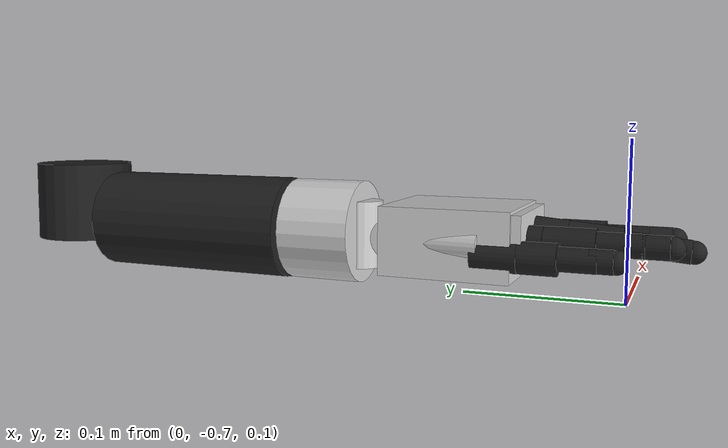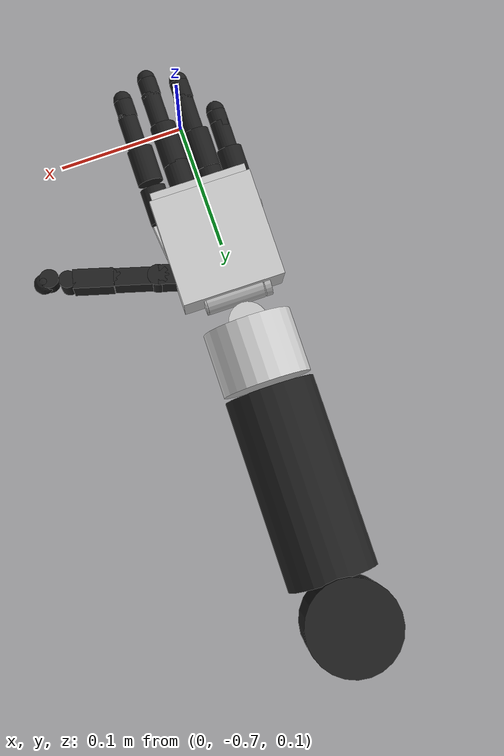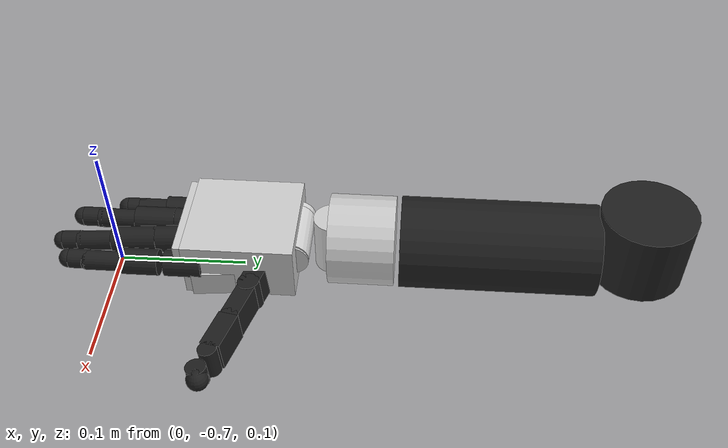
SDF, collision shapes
<sdf version='1.5'>
	<model name="mpl_haptix_right_forearm">
	<!-- Model SDF copied from gazebo_models -->

	<link name='world'>
		<pose>0 0 0 0 0 0</pose>
	</link>

	<joint name='elbow' type='revolute'>
		<child>forearm</child>
		<parent>world</parent>
		<axis>
			<xyz>0 0 1.0</xyz>
			<use_parent_model_frame>1</use_parent_model_frame>
		</axis>
		<limit>
			<lower>-1.57</lower>
			<upper>1.57</upper>
		</limit>
	</joint>
	<link name='forearm'>
		<pose>0.00660504 -0.294573 0.119123 -1.21334e-13 2.77556e-17 -0.0115373</pose>

		<collision name='collision'>
			<pose>0 0 0.02855 0 0 0</pose>
			<geometry>
				<cylinder>
					<radius>0.03567</radius>
					<length>0.0571</length>
				</cylinder>
			</geometry>

		</collision>
		<collision name='collision_1'>
			<pose>0 -0.10745 0.016 1.5707 0 0</pose>
				<geometry>
					<cylinder>
						<radius>0.035</radius>
						<length>0.148</length>
					</cylinder>
				</geometry>

		</collision>
		<visual name='visual'>
			<geometry>
				<mesh>
					<uri>model://mpl_haptix_right_forearm/meshes/forearm.stl</uri>
				</mesh>
			</geometry>
			<material>
				<script>
					<name>Gazebo/FlatBlack</name>
				</script>
			</material>
		</visual>
	</link>

	<link name='wristy'>
		<pose>0.00449937 -0.479995 0.135123 -1.2164e-13 1.09079e-14 -0.0115373</pose>

		<collision name='collision'>
			<pose>0 -0.025 0 1.5707 0 0</pose>
			<geometry>
				<cylinder>
					<radius>0.03447</radius>
					<length>0.05</length>
				</cylinder>
			</geometry>

		</collision>
		<visual name='visual'>
			<geometry>
				<mesh>
					<uri>model://mpl_haptix_right_forearm/meshes/wristy.stl</uri>
				</mesh>
			</geometry>
			<material>
				<ambient>0.2 0.2 0.2 1</ambient>
				<diffuse>0.8 0.8 0.8 1</diffuse>
				<specular>0.9 0.9 0.9 1</specular>
			</material>
		</visual>
	</link>
	<joint name='wristy' type='revolute'>
		<child>wristy</child>
			<parent>forearm</parent>
			<axis>
				<xyz>0.011537 0.999933 -1.2164e-13</xyz>

				<use_parent_model_frame>1</use_parent_model_frame>
			</axis>
<limit>
			<lower>-1.57</lower>
			<upper>1.57</upper>
		</limit>
	</joint>

	<link name='wristx'>
		<pose>0.003916 -0.527636 0.137161 -1.18962e-13 1.21847e-14 -0.0115373</pose>

		<collision name='collision'>
			<pose>0 0 -0.00314 0 0 0</pose>
			<geometry>
				<cylinder>
					<radius>0.01473</radius>
					<length>0.04478</length>
				</cylinder>
			</geometry>

		</collision>
		<collision name='collision_1'>
			<pose>0.02360 -0.02969 -0.00240 0 1.5707 0</pose>
			<geometry>
				<cylinder>
					<radius>0.013175</radius>
					<length>0.005</length>
				</cylinder>
			</geometry>

		</collision>
		<collision name='collision_2'>
			<pose>-0.02360 -0.02969 -0.00240 0 1.5707 0</pose>
			<geometry>
				<cylinder>
					<radius>0.013175</radius>
					<length>0.005</length>
				</cylinder>
			</geometry>

		</collision>
		<visual name='visual'>
			<geometry>
				<mesh>
					<uri>model://mpl_haptix_right_forearm/meshes/wristx.stl</uri>
				</mesh>
			</geometry>
			<material>
				<ambient>0.2 0.2 0.2 1</ambient>
				<diffuse>0.8 0.8 0.8 1</diffuse>
				<specular>0.9 0.9 0.9 1</specular>
			</material>
		</visual>
	</link>
	<joint name='wristx' type='revolute'>
<child>wristx</child>
<parent>wristy</parent>
<axis>
<xyz>-1.35564e-14 -1.18814e-13 -1</xyz>

<use_parent_model_frame>1</use_parent_model_frame>
</axis>

</joint>

<link name='wristz'>
<pose>0.00375708 -0.557636 0.135067 -2.87105e-13 1.42109e-14 -0.0115373</pose>

<collision name='collision'>
<pose>0.00207 -0.00047 0.00046 1.5707 0 1.5707</pose>
<geometry>
<cylinder>
<radius>0.01411</radius>
<length>0.04482</length>
</cylinder>
</geometry>

</collision>
<collision name='collision_palm'>
<max_contacts>4</max_contacts>
<pose>0.002 -0.03739 0 0 0 0</pose>
<geometry>
<box>
<size>0.07928 0.08316 0.04402</size>
</box>
</geometry>

</collision>
<collision name="palmEdge">
<max_contacts>4</max_contacts>
<pose>-0.028 -0.03 0 1.57 0 -0.1</pose>
<geometry>
<cylinder>
<radius>0.01</radius>
<length>0.060</length>
</cylinder>
</geometry>

</collision>
 <!-- Dorsal surface (top) -->
<collision name="handTop">
<max_contacts>4</max_contacts>
<pose>0.002 -0.045 0.01 0 0 0</pose>
<geometry>
<box>
<size>0.075 0.08 0.02</size>
</box>
</geometry>

</collision>
<!-- Palm 0 (closer to thumb) -->
<collision name="palm0">
<max_contacts>4</max_contacts>
<pose>0.023 -0.04 -0.012 0 0 0.1</pose>
<geometry>
<box>
<size>0.037 0.07 0.02</size>
</box>
</geometry>

</collision>
<!-- Palm 1 (closer to pinky) -->
<collision name="palm1">
<max_contacts>4</max_contacts>
<pose>-0.018 -0.04 -0.012 0 0 0</pose>
<geometry>
<box>
<size>0.037 0.07 0.02</size>
</box>
</geometry>

</collision>
<visual name='visual'>
<geometry>
<mesh>
<uri>model://mpl_haptix_right_forearm/meshes/wristz.stl</uri>
</mesh>
</geometry>
<material>
<ambient>0.2 0.2 0.2 1</ambient>
<diffuse>0.8 0.8 0.8 1</diffuse>
<specular>0.9 0.9 0.9 1</specular>
</material>
</visual>
<visual name='visual_palm'>
<pose>0.025625 0 0 1.7427e-13 8.3267e-17 -3.1876e-16</pose>
<geometry>
<mesh>
<uri>model://mpl_haptix_right_forearm/meshes/palm.stl</uri>
</mesh>
</geometry>
<material>
<script>
<name>Gazebo/FlatBlack</name>
</script>
</material>
</visual>
</link>
<joint name='wristz' type='revolute'>
<child>wristz</child>
<parent>wristx</parent>
<axis>
<xyz>0.999933 -0.011537 -1.42109e-14</xyz>

<use_parent_model_frame>1</use_parent_model_frame>
</axis>

</joint>

<link name='index0'>
<pose>0.0384854 -0.623842 0.136079 -1.14726e-13 0.174533 -0.0115373</pose>

<collision name='collision'>
<max_contacts>1</max_contacts>
<pose>0 -0.01339 0 1.5707 0 0</pose>
<geometry>
<cylinder>
<length>0.028</length>
<radius>0.01</radius>
</cylinder>
</geometry>

</collision>
<visual name='visual'>
<geometry>
<mesh>
<uri>model://mpl_haptix_right_forearm/meshes/index0.stl</uri>
</mesh>
</geometry>
<material>
<script>
<name>Gazebo/FlatBlack</name>
</script>
</material>
</visual>
</link>
<joint name='index0' type='revolute'>
<child>index0</child>
<parent>wristz</parent>
<axis>
<xyz>-0.173637 0.00200338 -0.984808</xyz>

<use_parent_model_frame>1</use_parent_model_frame>
</axis>

</joint>

<link name='index1'>
<pose>0.0383394 -0.641841 0.136068 -1.1474e-13 0.174533 -0.0115373</pose>

<collision name='collision'>
<max_contacts>2</max_contacts>
<pose>0 -0.02782 0 1.5707 0 0</pose>
<geometry>
<cylinder>
<radius>0.01</radius>
<length>0.02781</length>
</cylinder>
</geometry>

</collision>
<visual name='visual'>
<geometry>
<mesh>
<uri>model://mpl_haptix_right_forearm/meshes/index1.stl</uri>
</mesh>
</geometry>
<material>
<script>
<name>Gazebo/FlatBlack</name>
</script>
</material>
</visual>
</link>
<joint name='index1' type='revolute'>
<child>index1</child>
<parent>index0</parent>
<axis>
<xyz>0.984742 -0.0113618 -0.173648</xyz>

<use_parent_model_frame>1</use_parent_model_frame>
</axis>

</joint>

<link name='index2'>
<pose>0.0389938 -0.685352 0.136372 -1.1445e-13 0.174533 -0.0115373</pose>

<collision name='collision'>
<max_contacts>2</max_contacts>
<pose>0 -0.01152 0 1.5707 0 0</pose>
<geometry>
<cylinder>
<length>0.029</length>
<radius>0.0075</radius>
</cylinder>
</geometry>

</collision>
<collision name='collision_1'>
<max_contacts>2</max_contacts>
<pose>0 -0.02502 0 0 0 0</pose>
<geometry>
<sphere>
<radius>0.0075</radius>
</sphere>
</geometry>

</collision>
<visual name='visual'>
<geometry>
<mesh>
<uri>model://mpl_haptix_right_forearm/meshes/index2.stl</uri>
</mesh>
</geometry>
<material>
<script>
<name>Gazebo/FlatBlack</name>
</script>
</material>
</visual>
</link>
<joint name='index2' type='revolute'>
<child>index2</child>
<parent>index1</parent>
<axis>
<xyz>0.984742 -0.0113618 -0.173648</xyz>

<use_parent_model_frame>1</use_parent_model_frame>
</axis>

</joint>

<link name='index3'>
<self_collide>true</self_collide>
<pose>0.0380858 -0.709843 0.136482 -1.15476e-13 0.174533 -0.0115373</pose>

<collision name='collision'>
<max_contacts>1</max_contacts>
<pose>0 -0.00688 0.0001 1.5707 0 0</pose>
<geometry>
<cylinder>
<length>0.01376</length>
<radius>0.0074</radius>
</cylinder>
</geometry>

</collision>
<collision name='collision_1'>
<max_contacts>1</max_contacts>
<pose>0 -0.015 0.0001 0 0 0</pose>
<geometry>
<sphere>
<radius>0.0072</radius>
</sphere>
</geometry>

</collision>
<visual name='visual'>
<geometry>
<mesh>
<uri>model://mpl_haptix_right_forearm/meshes/index3.stl</uri>
</mesh>
</geometry>
<material>
<script>
<name>Gazebo/FlatBlack</name>
</script>
</material>
</visual>
</link>
<joint name='index3' type='revolute'>
<child>index3</child>
<parent>index2</parent>
<axis>
<xyz>0.984742 -0.0113618 -0.173648</xyz>

<use_parent_model_frame>1</use_parent_model_frame>
</axis>

</joint>

<link name='middle0'>
<pose>0.0156685 -0.63568 0.140513 0.0872665 1.4183e-14 -0.0115373</pose>

<collision name='collision'>
<max_contacts>1</max_contacts>
<pose>0 -0.01339 0 1.5707 0 0</pose>
<geometry>
<cylinder>
<length>0.028</length>
<radius>0.01</radius>
</cylinder>
</geometry>

</collision>
<visual name='visual'>
<geometry>
<mesh>
<uri>model://mpl_haptix_right_forearm/meshes/middle0.stl</uri>
</mesh>
</geometry>
<material>
<script>
<name>Gazebo/FlatBlack</name>
</script>
</material>
</visual>
</link>
<joint name='middle0' type='revolute'>
<child>middle0</child>
<parent>wristz</parent>
<axis>
<xyz>0.00100552 0.0871499 -0.996195</xyz>

<use_parent_model_frame>1</use_parent_model_frame>
</axis>

</joint>

<link name='middle1'>
<pose>0.0155242 -0.653612 0.138944 0.0872665 1.43013e-14 -0.0115373</pose>

<collision name='collision'>
<max_contacts>2</max_contacts>
<pose>0 -0.025 0 1.5707 0 0</pose>
<geometry>
<cylinder>
<radius>0.01</radius>
<length>0.03459</length>
</cylinder>
</geometry>

</collision>
<visual name='visual'>
<geometry>
<mesh>
<uri>model://mpl_haptix_right_forearm/meshes/middle1.stl</uri>
</mesh>
</geometry>
<material>
<script>
<name>Gazebo/FlatBlack</name>
</script>
</material>
</visual>
</link>
<joint name='middle1' type='revolute'>
<child>middle1</child>
<parent>middle0</parent>
<axis>
<xyz>0.999933 -0.011537 -1.43013e-14</xyz>

<use_parent_model_frame>1</use_parent_model_frame>
</axis>

</joint>

<link name='middle2'>
<pose>0.0161097 -0.696999 0.135651 0.0872665 1.32728e-14 -0.0115373</pose>

<collision name='collision'>
<max_contacts>2</max_contacts>
<pose>0 -0.01152 0 1.5707 0 0</pose>
<geometry>
<cylinder>
<length>0.029</length>
<radius>0.0075</radius>
</cylinder>
</geometry>

</collision>
<collision name='collision_1'>
<max_contacts>2</max_contacts>
<pose>0 -0.02302 0 0 0 0</pose>
<geometry>
<sphere>
<radius>0.0075</radius>
</sphere>
</geometry>

</collision>
<visual name='visual'>
<geometry>
<mesh>
<uri>model://mpl_haptix_right_forearm/meshes/middle2.stl</uri>
</mesh>
</geometry>
<material>
<script>
<name>Gazebo/FlatBlack</name>
</script>
</material>
</visual>
</link>
<joint name='middle2' type='revolute'>
<child>middle2</child>
<parent>middle1</parent>
<axis>
<xyz>0.999933 -0.011537 -1.32727e-14</xyz>

<use_parent_model_frame>1</use_parent_model_frame>
</axis>

</joint>

<link name='middle3'>
<self_collide>true</self_collide>
<pose>0.0151931 -0.721397 0.133515 0.0872665 1.51577e-14 -0.0115373</pose>

<collision name='collision'>
<max_contacts>1</max_contacts>
<pose>0 -0.00688 0.0001 1.5707 0 0</pose>
<geometry>
<cylinder>
<length>0.01376</length>
<radius>0.0074</radius>
</cylinder>
</geometry>

</collision>
<collision name='collision_1'>
<max_contacts>1</max_contacts>
<pose>0 -0.015 0.0001 0 0 0</pose>
<geometry>
<sphere>
<radius>0.0072</radius>
</sphere>
</geometry>

</collision>
<visual name='visual'>
<geometry>
<mesh>
<uri>model://mpl_haptix_right_forearm/meshes/middle3.stl</uri>
</mesh>
</geometry>
<material>
<script>
<name>Gazebo/FlatBlack</name>
</script>
</material>
</visual>
</link>
<joint name='middle3' type='revolute'>
<child>middle3</child>
<parent>middle2</parent>
<axis>
<xyz>0.999933 -0.011537 -1.51577e-14</xyz>

<use_parent_model_frame>1</use_parent_model_frame>
</axis>

</joint>

<link name='pinky0'>
<pose>-0.0275009 -0.61268 0.129428 -1.14942e-13 -0.174533 -0.0115373</pose>

<collision name='collision'>
<max_contacts>1</max_contacts>
<pose>0 -0.01339 0 1.5707 0 0</pose>
<geometry>
<cylinder>
<length>0.028</length>
<radius>0.01</radius>
</cylinder>
</geometry>

</collision>
<visual name='visual'>
<geometry>
<mesh>
<uri>model://mpl_haptix_right_forearm/meshes/pinky0.stl</uri>
</mesh>
</geometry>
<material>
<script>
<name>Gazebo/FlatBlack</name>
</script>
</material>
</visual>
</link>
<joint name='pinky0' type='revolute'>
<child>pinky0</child>
<parent>wristz</parent>
<axis>
<xyz>0.173637 -0.00200338 -0.984808</xyz>

<use_parent_model_frame>1</use_parent_model_frame>
</axis>

</joint>

<link name='pinky1'>
<pose>-0.0276458 -0.630579 0.129439 -1.14943e-13 -0.174533 -0.0115373</pose>

<collision name='collision'>
<max_contacts>2</max_contacts>
<pose>0 -0.02082 0 1.5707 0 0</pose>
<geometry>
<cylinder>
<radius>0.01</radius>
<length>0.02381</length>
</cylinder>
</geometry>

</collision>
<visual name='visual'>
<geometry>
<mesh>
<uri>model://mpl_haptix_right_forearm/meshes/pinky1.stl</uri>
</mesh>
</geometry>
<material>
<script>
<name>Gazebo/FlatBlack</name>
</script>
</material>
</visual>
</link>
<joint name='pinky1' type='revolute'>
<child>pinky1</child>
<parent>pinky0</parent>
<axis>
<xyz>0.984742 -0.0113618 0.173648</xyz>

<use_parent_model_frame>1</use_parent_model_frame>
</axis>

</joint>

<link name='pinky2'>
<pose>-0.0275441 -0.663582 0.130032 -1.14415e-13 -0.174533 -0.0115373</pose>

<collision name='collision'>
<max_contacts>2</max_contacts>
<pose>0 -0.0076 0 1.5707 0 0</pose>
<geometry>
<cylinder>
<length>0.029</length>
<radius>0.0075</radius>
</cylinder>
</geometry>

</collision>
<visual name='visual'>
<geometry>
<mesh>
<uri>model://mpl_haptix_right_forearm/meshes/pinky2.stl</uri>
</mesh>
</geometry>
<material>
<script>
<name>Gazebo/FlatBlack</name>
</script>
</material>
</visual>
</link>
<joint name='pinky2' type='revolute'>
<child>pinky2</child>
<parent>pinky1</parent>
<axis>
<xyz>0.984742 -0.0113618 0.173648</xyz>

<use_parent_model_frame>1</use_parent_model_frame>
</axis>

</joint>

<link name='pinky3'>
<self_collide>true</self_collide>
<pose>-0.0277931 -0.681081 0.130023 -1.14622e-13 -0.174533 -0.0115373</pose>

<collision name='collision'>
<max_contacts>1</max_contacts>
<pose>0 -0.00688 0.0001 1.5707 0 0</pose>
<geometry>
<cylinder>
<length>0.01376</length>
<radius>0.0074</radius>
</cylinder>
</geometry>

</collision>
<collision name='collision_1'>
<max_contacts>1</max_contacts>
<pose>0 -0.015 0.0001 0 0 0</pose>
<geometry>
<sphere>
<radius>0.0072</radius>
</sphere>
</geometry>

</collision>
<visual name='visual'>
<geometry>
<mesh>
<uri>model://mpl_haptix_right_forearm/meshes/pinky3.stl</uri>
</mesh>
</geometry>
<material>
<script>
<name>Gazebo/FlatBlack</name>
</script>
</material>
</visual>
</link>
<joint name='pinky3' type='revolute'>
<child>pinky3</child>
<parent>pinky2</parent>
<axis>
<xyz>0.984742 -0.0113618 0.173648</xyz>

<use_parent_model_frame>1</use_parent_model_frame>
</axis>

</joint>

<link name='ring0'>
<pose>-0.00687963 -0.624218 0.136579 -1.14553e-13 -0.174533 -0.0115373</pose>

<collision name='collision'>
<max_contacts>1</max_contacts>
<pose>0 -0.01339 0 1.5707 0 0</pose>
<geometry>
<cylinder>
<length>0.028</length>
<radius>0.01</radius>
</cylinder>
</geometry>

</collision>
<visual name='visual'>
<geometry>
<mesh>
<uri>model://mpl_haptix_right_forearm/meshes/ring0.stl</uri>
</mesh>
</geometry>
<material>
<script>
<name>Gazebo/FlatBlack</name>
</script>
</material>
</visual>
</link>
<joint name='ring0' type='revolute'>
<child>ring0</child>
<parent>wristz</parent>
<axis>
<xyz>0.173637 -0.00200338 -0.984808</xyz>

<use_parent_model_frame>1</use_parent_model_frame>
</axis>

</joint>

<link name='ring1'>
<pose>-0.00702565 -0.642218 0.13659 -1.14538e-13 -0.174533 -0.0115373</pose>

<collision name='collision'>
<max_contacts>2</max_contacts>
<pose>0 -0.02505 0 1.5707 0 0</pose>
<geometry>
<cylinder>
<radius>0.01</radius>
<length>0.03095</length>
</cylinder>
</geometry>

</collision>
<visual name='visual'>
<geometry>
<mesh>
<uri>model://mpl_haptix_right_forearm/meshes/ring1.stl</uri>
</mesh>
</geometry>
<material>
<script>
<name>Gazebo/FlatBlack</name>
</script>
</material>
</visual>
</link>
<joint name='ring1' type='revolute'>
<child>ring1</child>
<parent>ring0</parent>
<axis>
<xyz>0.984742 -0.0113618 0.173648</xyz>

<use_parent_model_frame>1</use_parent_model_frame>
</axis>

</joint>

<link name='ring2'>
<pose>-0.0065449 -0.685726 0.137271 -1.14828e-13 -0.174533 -0.0115373</pose>

<collision name='collision'>
<max_contacts>2</max_contacts>
<pose>0 -0.01152 0 1.5707 0 0</pose>
<geometry>
<cylinder>
<length>0.029</length>
<radius>0.0075</radius>
</cylinder>
</geometry>

</collision>
<collision name='collision_1'>
<max_contacts>2</max_contacts>
<pose>0 -0.02302 0 0 0 0</pose>
<geometry>
<sphere>
<radius>0.0075</radius>
</sphere>
</geometry>

</collision>
<visual name='visual'>
<geometry>
<mesh>
<uri>model://mpl_haptix_right_forearm/meshes/ring2.stl</uri>
</mesh>
</geometry>
<material>
<script>
<name>Gazebo/FlatBlack</name>
</script>
</material>
</visual>
</link>
<joint name='ring2' type='revolute'>
<child>ring2</child>
<parent>ring1</parent>
<axis>
<xyz>0.984742 -0.0113618 0.173648</xyz>

<use_parent_model_frame>1</use_parent_model_frame>
</axis>

</joint>

<link name='ring3'>
<self_collide>true</self_collide>
<pose>-0.00745287 -0.710217 0.13716 -1.14821e-13 -0.174533 -0.0115373</pose>

<collision name='collision'>
<max_contacts>1</max_contacts>
<pose>0 -0.00688 0.0001 1.5707 0 0</pose>
<geometry>
<cylinder>
<length>0.01376</length>
<radius>0.0074</radius>
</cylinder>
</geometry>

</collision>
<collision name='collision_1'>
<max_contacts>1</max_contacts>
<pose>0 -0.015 0.0001 0 0 0</pose>
<geometry>
<sphere>
<radius>0.0072</radius>
</sphere>
</geometry>

</collision>
<visual name='visual'>
<geometry>
<mesh>
<uri>model://mpl_haptix_right_forearm/meshes/ring3.stl</uri>
</mesh>
</geometry>
<material>
<script>
<name>Gazebo/FlatBlack</name>
</script>
</material>
</visual>
</link>
<joint name='ring3' type='revolute'>
<child>ring3</child>
<parent>ring2</parent>
<axis>
<xyz>0.984742 -0.0113618 0.173648</xyz>

<use_parent_model_frame>1</use_parent_model_frame>
</axis>

</joint>

<link name='thumb0'>
<pose>0.0374985 -0.578725 0.124974 0.0873761 -0.0305803 -0.276903</pose>

<collision name='collision'>
<max_contacts>2</max_contacts>
<pose>0.0200 -0.001 0.0015 0 0 0</pose>
<geometry>
<cylinder>
<length>0.023</length>
<radius>0.008221</radius>
</cylinder>
</geometry>

</collision>
<collision name='collision_1'>
<max_contacts>2</max_contacts>
<pose>0.01 -.001 0.0015 0 0 0</pose>
<geometry>
<box>
<size>0.0202 0.0155 0.023</size>
</box>
</geometry>

</collision>
<visual name='visual'>
<geometry>
<mesh>
<uri>model://mpl_haptix_right_forearm/meshes/thumb0.stl</uri>
</mesh>
</geometry>
<material>
<script>
<name>Gazebo/FlatBlack</name>
</script>
</material>
</visual>
</link>
<joint name='thumb0' type='revolute'>
<child>thumb0</child>
<parent>wristz</parent>
<axis>
<xyz>0.269769 0.958967 0.0872241</xyz>

<use_parent_model_frame>1</use_parent_model_frame>
</axis>

</joint>

<link name='thumb1'>
<pose>0.057306 -0.585356 0.126981 0.0873761 -0.0305803 -0.276903</pose>

<collision name='collision'>
<max_contacts>2</max_contacts>
<pose>-0.00056 0.00 -0.00025 0 0 0</pose>
<geometry>
<cylinder>
<length>0.0188</length>
<radius>0.00688</radius>
</cylinder>
</geometry>

</collision>
<collision name='collision_1'>
<max_contacts>2</max_contacts>
<pose>0.03381 0 0 0 0 0</pose>
<geometry>
<cylinder>
<length>0.02176</length>
<radius>0.00688</radius>
</cylinder>
</geometry>

</collision>
<collision name='collision_2'>
<max_contacts>2</max_contacts>
<pose>0.01613 0 0 0 0 0</pose>
<geometry>
<box>
<size>0.03273 0.01376 0.02176</size>
</box>
</geometry>

</collision>
<visual name='visual'>
<geometry>
<mesh>
<uri>model://mpl_haptix_right_forearm/meshes/thumb1.stl</uri>
</mesh>
</geometry>
<material>
<script>
<name>Gazebo/FlatBlack</name>
</script>
</material>
</visual>
</link>
<joint name='thumb1' type='revolute'>
<child>thumb1</child>
<parent>thumb0</parent>
<axis>
<xyz>0.0531549 0.0756139 -0.995719</xyz>

<use_parent_model_frame>1</use_parent_model_frame>
</axis>

</joint>

<link name='thumb2'>
<pose>0.0895543 -0.594453 0.127266 0.0873761 -0.0305803 -0.276903</pose>

<collision name='collision'>
<max_contacts>2</max_contacts>
<pose>0.03415 0 0.001 0 0 0</pose>
<geometry>
<cylinder>
<radius>0.00679</radius>
<length>0.02236</length>
</cylinder>
</geometry>

</collision>
<collision name='collision_1'>
<max_contacts>2</max_contacts>
<pose>0.01493 0 0.001 0 0 0</pose>
<geometry>
<box>
<size>0.03095 0.015 0.02236</size>
</box>
</geometry>

</collision>
<visual name='visual'>
<geometry>
<mesh>
<uri>model://mpl_haptix_right_forearm/meshes/thumb2.stl</uri>
</mesh>
</geometry>
<material>
<script>
<name>Gazebo/FlatBlack</name>
</script>
</material>
</visual>
</link>
<joint name='thumb2' type='revolute'>
<child>thumb2</child>
<parent>thumb1</parent>
<axis>
<xyz>0.0531549 0.0756139 -0.995719</xyz>

<use_parent_model_frame>1</use_parent_model_frame>
</axis>

</joint>

<link name='thumb3'>
<self_collide>true</self_collide>
<pose>0.121705 -0.603689 0.129371 0.0873761 -0.0305803 -0.276903</pose>

<collision name='collision'>
<max_contacts>1</max_contacts>
<pose>0.01507 -0.00219 0.0001 0 0 0</pose>
<geometry>
<cylinder>
<length>0.01476</length>
<radius>0.0074</radius>
</cylinder>
</geometry>

</collision>
<collision name='collision_1'>
<max_contacts>1</max_contacts>
<pose>0.0195 0 0 0 0 0</pose>
<geometry>
<sphere>
<radius>0.008</radius>
</sphere>
</geometry>

</collision>
<visual name='visual'>
<geometry>
<mesh>
<uri>model://mpl_haptix_right_forearm/meshes/thumb3.stl</uri>
</mesh>
</geometry>
<material>
<script>
<name>Gazebo/FlatBlack</name>
</script>
</material>
</visual>
</link>
<joint name='thumb3' type='revolute'>
<child>thumb3</child>
<parent>thumb2</parent>
<axis>
<xyz>0.0531549 0.0756139 -0.995719</xyz>

<use_parent_model_frame>1</use_parent_model_frame>
</axis>
</joint>
	<plugin name="set_joint_position" filename="libset_joint_position_plugin.so">
		<topicName> /hand_motion </topicName>
		<joints>
			wristx
			wristy
			wristz
        	</joints>
	</plugin>
</model>
</sdf>
